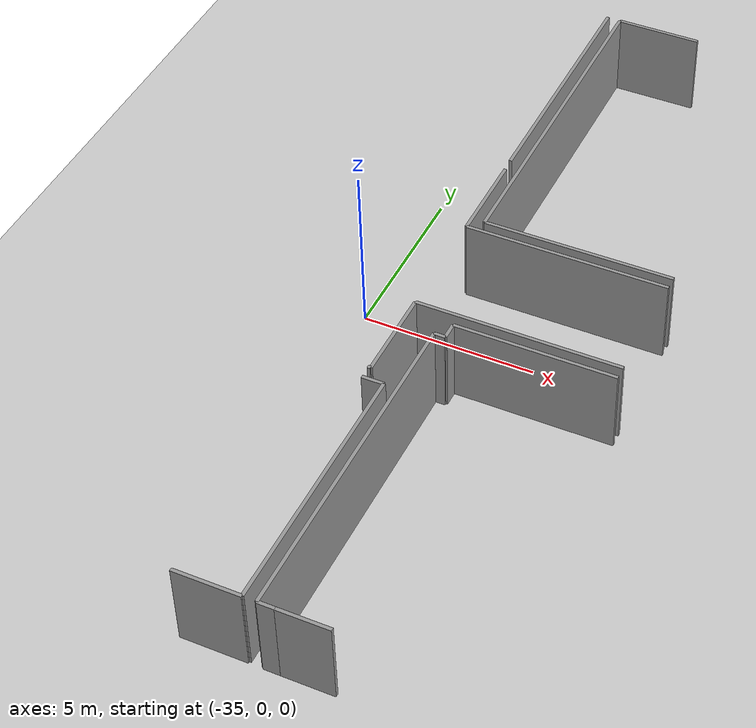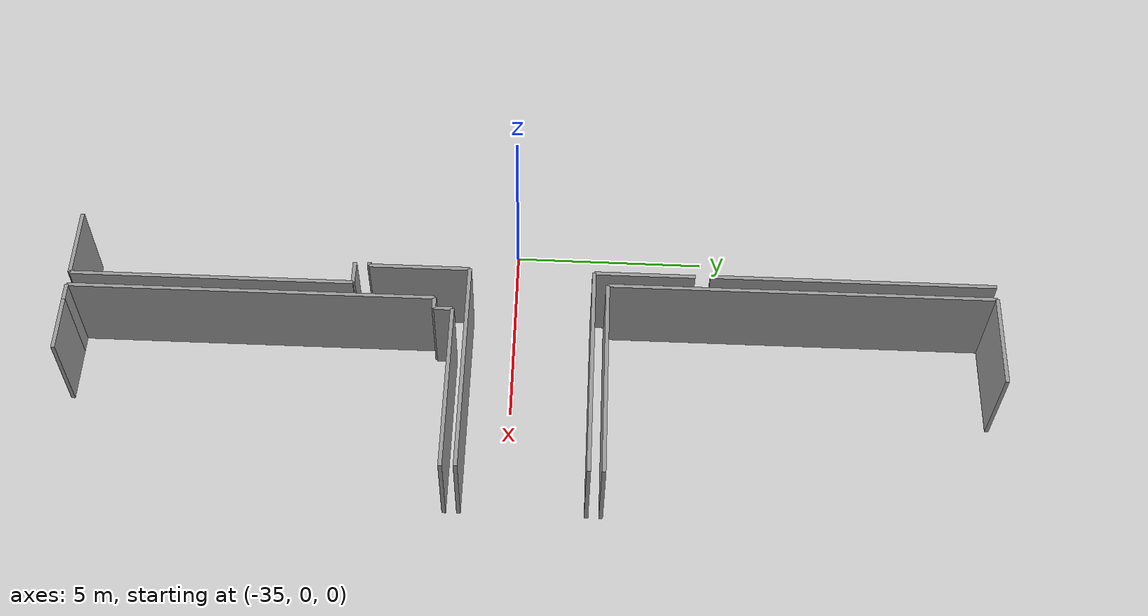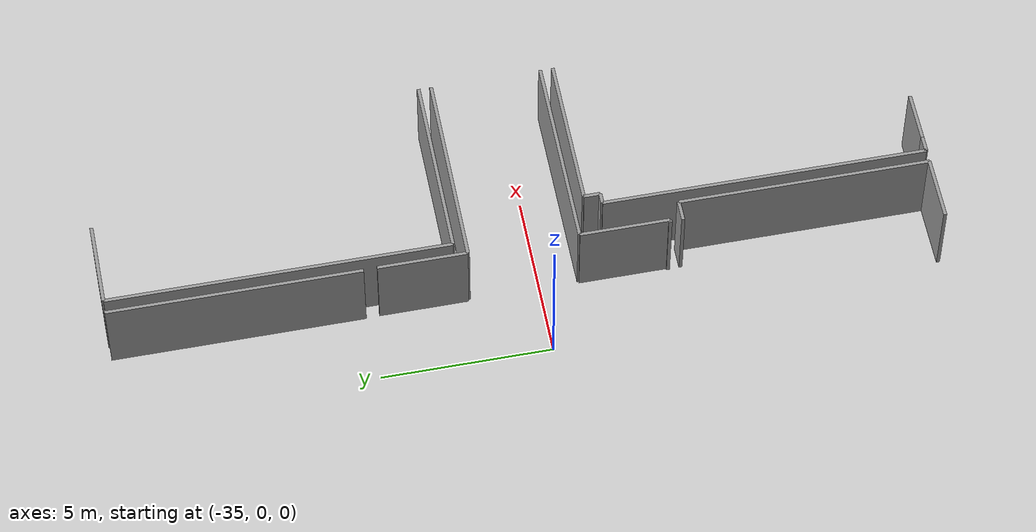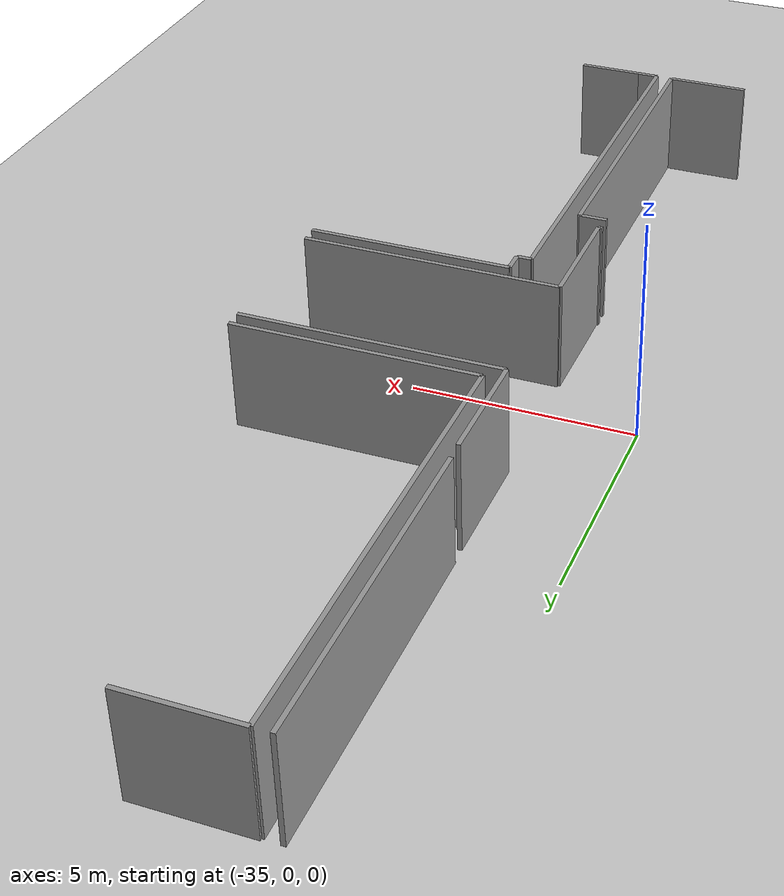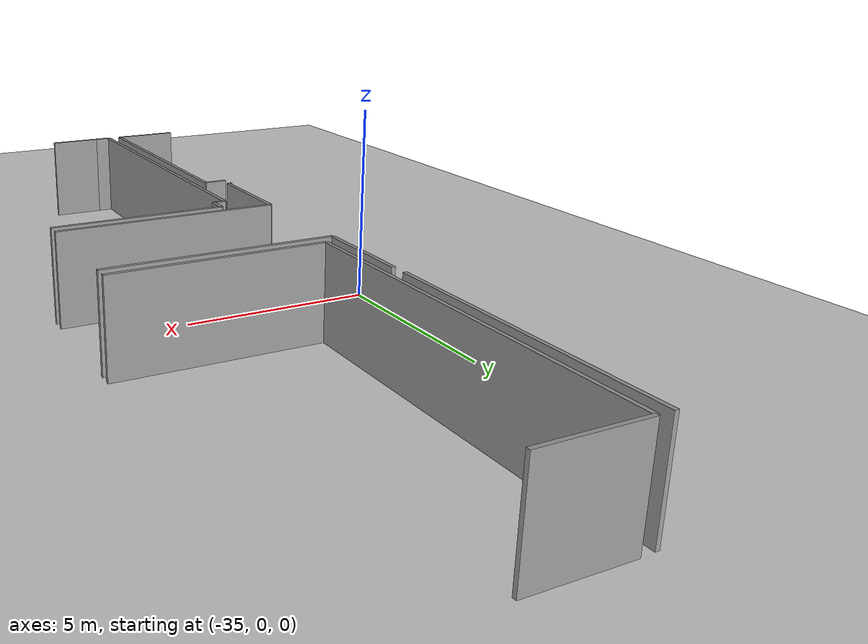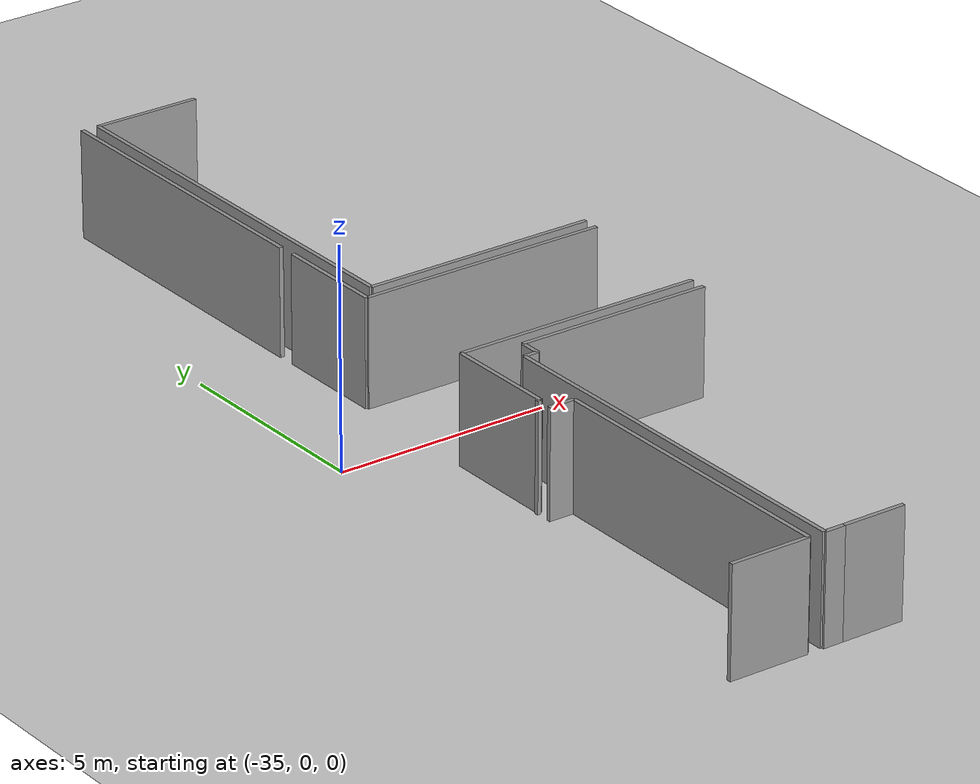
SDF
<sdf version="1.6">
 <world name="default">
  <model name="ground_plane">
   <static>1</static>
   <link name="link">
    <collision name="collision">
     <geometry><plane><normal>0 0 1</normal><size>100 100</size></plane></geometry>
     <surface><friction><ode><mu>100</mu><mu2>50</mu2></ode></friction></surface>
    </collision>
    <visual name="visual">
     <cast_shadows>0</cast_shadows>
     <geometry><plane><normal>0 0 1</normal><size>100 100</size></plane></geometry>
     <material>
      <script><uri>file://media/materials/scripts/gazebo.material</uri><name>Gazebo/Grey</name></script>
     </material>
    </visual>
   </link>
  </model>
  <model name="0510034691_Layout1">
   <static>1</static>
   <link name="Wall_9">
    <collision name="Wall_9_Collision">
     <geometry><box><size>7.37385291949 0.1 2.5</size></box></geometry>
     <pose>3.68692645975 0 1.25 0 0 0</pose>
    </collision>
    <visual name="Wall_9_Visual">
     <pose>3.68692645975 0 1.25 0 0 0</pose>
     <geometry><box><size>7.37385291949 0.1 2.5</size></box></geometry>
     <material>
      <script><uri>file://media/materials/scripts/gazebo.material</uri><name>Gazebo/Grey</name></script>
      <ambient>1 1 1 1</ambient>
     </material>
    </visual>
    <pose>23.6006253336 -0.0 0 0 0 -1.57079632679</pose>
   </link>
   <link name="Wall_13">
    <collision name="Wall_13_Collision">
     <geometry><box><size>0.619487023056 0.1 2.5</size></box></geometry>
     <pose>0.309743511528 0 1.25 0 0 0</pose>
    </collision>
    <visual name="Wall_13_Visual">
     <pose>0.309743511528 0 1.25 0 0 0</pose>
     <geometry><box><size>0.619487023056 0.1 2.5</size></box></geometry>
     <material>
      <script><uri>file://media/materials/scripts/gazebo.material</uri><name>Gazebo/Grey</name></script>
      <ambient>1 1 1 1</ambient>
     </material>
    </visual>
    <pose>23.5525814078 -16.6012099952 0 0 0 0.0</pose>
   </link>
   <link name="Wall_14">
    <collision name="Wall_14_Collision">
     <geometry><box><size>7.36317649152 0.1 2.5</size></box></geometry>
     <pose>3.68158824576 0 1.25 0 0 0</pose>
    </collision>
    <visual name="Wall_14_Visual">
     <pose>3.68158824576 0 1.25 0 0 0</pose>
     <geometry><box><size>7.36317649152 0.1 2.5</size></box></geometry>
     <material>
      <script><uri>file://media/materials/scripts/gazebo.material</uri><name>Gazebo/Grey</name></script>
      <ambient>1 1 1 1</ambient>
     </material>
    </visual>
    <pose>24.1720684308 -16.6012099952 0 0 0 -1.57079632679</pose>
   </link>
   <link name="Wall_15">
    <collision name="Wall_15_Collision">
     <geometry><box><size>1.87536541346 0.1 2.5</size></box></geometry>
     <pose>0.937682706729 0 1.25 0 0 0</pose>
    </collision>
    <visual name="Wall_15_Visual">
     <pose>0.937682706729 0 1.25 0 0 0</pose>
     <geometry><box><size>1.87536541346 0.1 2.5</size></box></geometry>
     <material>
      <script><uri>file://media/materials/scripts/gazebo.material</uri><name>Gazebo/Grey</name></script>
      <ambient>1 1 1 1</ambient>
     </material>
    </visual>
    <pose>24.1720684308 -23.9643864867 0 0 0 3.14159265359</pose>
   </link>
   <link name="Wall_17">
    <collision name="Wall_17_Collision">
     <geometry><box><size>0.468237626783 0.1 2.5</size></box></geometry>
     <pose>0.234118813391 0 1.25 0 0 0</pose>
    </collision>
    <visual name="Wall_17_Visual">
     <pose>0.234118813391 0 1.25 0 0 0</pose>
     <geometry><box><size>0.468237626783 0.1 2.5</size></box></geometry>
     <material>
      <script><uri>file://media/materials/scripts/gazebo.material</uri><name>Gazebo/Grey</name></script>
      <ambient>1 1 1 1</ambient>
     </material>
    </visual>
    <pose>25.0218612573 -23.9708686037 0 0 0 3.14159265359</pose>
   </link>
   <link name="Wall_18">
    <collision name="Wall_18_Collision">
     <geometry><box><size>9.5132057246 0.1 2.5</size></box></geometry>
     <pose>4.7566028623 0 1.25 0 0 0</pose>
    </collision>
    <visual name="Wall_18_Visual">
     <pose>4.7566028623 0 1.25 0 0 0</pose>
     <geometry><box><size>9.5132057246 0.1 2.5</size></box></geometry>
     <material>
      <script><uri>file://media/materials/scripts/gazebo.material</uri><name>Gazebo/Grey</name></script>
      <ambient>1 1 1 1</ambient>
     </material>
    </visual>
    <pose>24.5536236305 -23.9708686037 0 0 0 1.57079632679</pose>
   </link>
   <link name="Wall_19">
    <collision name="Wall_19_Collision">
     <geometry><box><size>0.319657337502 0.1 2.5</size></box></geometry>
     <pose>0.159828668751 0 1.25 0 0 0</pose>
    </collision>
    <visual name="Wall_19_Visual">
     <pose>0.159828668751 0 1.25 0 0 0</pose>
     <geometry><box><size>0.319657337502 0.1 2.5</size></box></geometry>
     <material>
      <script><uri>file://media/materials/scripts/gazebo.material</uri><name>Gazebo/Grey</name></script>
      <ambient>1 1 1 1</ambient>
     </material>
    </visual>
    <pose>24.5536236305 -14.4576628791 0 0 0 0.0</pose>
   </link>
   <link name="Wall_20">
    <collision name="Wall_20_Collision">
     <geometry><box><size>0.479930857419 0.1 2.5</size></box></geometry>
     <pose>0.239965428709 0 1.25 0 0 0</pose>
    </collision>
    <visual name="Wall_20_Visual">
     <pose>0.239965428709 0 1.25 0 0 0</pose>
     <geometry><box><size>0.479930857419 0.1 2.5</size></box></geometry>
     <material>
      <script><uri>file://media/materials/scripts/gazebo.material</uri><name>Gazebo/Grey</name></script>
      <ambient>1 1 1 1</ambient>
     </material>
    </visual>
    <pose>24.873280968 -14.4576628791 0 0 0 1.57079632679</pose>
   </link>
   <link name="Wall_21">
    <collision name="Wall_21_Collision">
     <geometry><box><size>4.56493556013 0.1 2.5</size></box></geometry>
     <pose>2.28246778007 0 1.25 0 0 0</pose>
    </collision>
    <visual name="Wall_21_Visual">
     <pose>2.28246778007 0 1.25 0 0 0</pose>
     <geometry><box><size>4.56493556013 0.1 2.5</size></box></geometry>
     <material>
      <script><uri>file://media/materials/scripts/gazebo.material</uri><name>Gazebo/Grey</name></script>
      <ambient>1 1 1 1</ambient>
     </material>
    </visual>
    <pose>24.873280968 -13.9777320217 0 0 0 0.0</pose>
   </link>
   <link name="Wall_28">
    <collision name="Wall_28_Collision">
     <geometry><box><size>1.461910953 0.1 2.5</size></box></geometry>
     <pose>0.730955476498 0 1.25 0 0 0</pose>
    </collision>
    <visual name="Wall_28_Visual">
     <pose>0.730955476498 0 1.25 0 0 0</pose>
     <geometry><box><size>1.461910953 0.1 2.5</size></box></geometry>
     <material>
      <script><uri>file://media/materials/scripts/gazebo.material</uri><name>Gazebo/Grey</name></script>
      <ambient>1 1 1 1</ambient>
     </material>
    </visual>
    <pose>26.4837692875 -23.967945296 0 0 0 -3.13959300402</pose>
   </link>
   <link name="Wall_37">
    <collision name="Wall_37_Collision">
     <geometry><box><size>9.99491598668 0.1 2.5</size></box></geometry>
     <pose>4.99745799334 0 1.25 0 0 0</pose>
    </collision>
    <visual name="Wall_37_Visual">
     <pose>4.99745799334 0 1.25 0 0 0</pose>
     <geometry><box><size>9.99491598668 0.1 2.5</size></box></geometry>
     <material>
      <script><uri>file://media/materials/scripts/gazebo.material</uri><name>Gazebo/Grey</name></script>
      <ambient>1 1 1 1</ambient>
     </material>
    </visual>
    <pose>23.9891710516 -10.0157604413 0 0 0 1.57079632679</pose>
   </link>
   <link name="Wall_38">
    <collision name="Wall_38_Collision">
     <geometry><box><size>2.48214240321 0.1 2.5</size></box></geometry>
     <pose>1.24107120161 0 1.25 0 0 0</pose>
    </collision>
    <visual name="Wall_38_Visual">
     <pose>1.24107120161 0 1.25 0 0 0</pose>
     <geometry><box><size>2.48214240321 0.1 2.5</size></box></geometry>
     <material>
      <script><uri>file://media/materials/scripts/gazebo.material</uri><name>Gazebo/Grey</name></script>
      <ambient>1 1 1 1</ambient>
     </material>
    </visual>
    <pose>23.9891710516 -0.0208444546125 0 0 0 0.0</pose>
   </link>
   <link name="Wall_42">
    <collision name="Wall_42_Collision">
     <geometry><box><size>5.45261575743 0.1 2.5</size></box></geometry>
     <pose>2.72630787872 0 1.25 0 0 0</pose>
    </collision>
    <visual name="Wall_42_Visual">
     <pose>2.72630787872 0 1.25 0 0 0</pose>
     <geometry><box><size>5.45261575743 0.1 2.5</size></box></geometry>
     <material>
      <script><uri>file://media/materials/scripts/gazebo.material</uri><name>Gazebo/Grey</name></script>
      <ambient>1 1 1 1</ambient>
     </material>
    </visual>
    <pose>29.4417753375 -10.004575612 0 0 0 -3.13954137442</pose>
   </link>
   <link name="Wall_52">
    <collision name="Wall_52_Collision">
     <geometry><box><size>2.61013243855 0.1 2.5</size></box></geometry>
     <pose>1.30506621927 0 1.25 0 0 0</pose>
    </collision>
    <visual name="Wall_52_Visual">
     <pose>1.30506621927 0 1.25 0 0 0</pose>
     <geometry><box><size>2.61013243855 0.1 2.5</size></box></geometry>
     <material>
      <script><uri>file://media/materials/scripts/gazebo.material</uri><name>Gazebo/Grey</name></script>
      <ambient>1 1 1 1</ambient>
     </material>
    </visual>
    <pose>23.6185464806 -7.76430514248 0 0 0 -1.57079632679</pose>
   </link>
   <link name="Wall_53">
    <collision name="Wall_53_Collision">
     <geometry><box><size>5.81763644221 0.1 2.5</size></box></geometry>
     <pose>2.9088182211 0 1.25 0 0 0</pose>
    </collision>
    <visual name="Wall_53_Visual">
     <pose>2.9088182211 0 1.25 0 0 0</pose>
     <geometry><box><size>5.81763644221 0.1 2.5</size></box></geometry>
     <material>
      <script><uri>file://media/materials/scripts/gazebo.material</uri><name>Gazebo/Grey</name></script>
      <ambient>1 1 1 1</ambient>
     </material>
    </visual>
    <pose>23.6185464806 -10.374437581 0 0 0 0.0</pose>
   </link>
   <link name="Wall_62">
    <collision name="Wall_62_Collision">
     <geometry><box><size>5.81356923155 0.1 2.5</size></box></geometry>
     <pose>2.90678461578 0 1.25 0 0 0</pose>
    </collision>
    <visual name="Wall_62_Visual">
     <pose>2.90678461578 0 1.25 0 0 0</pose>
     <geometry><box><size>5.81356923155 0.1 2.5</size></box></geometry>
     <material>
      <script><uri>file://media/materials/scripts/gazebo.material</uri><name>Gazebo/Grey</name></script>
      <ambient>1 1 1 1</ambient>
     </material>
    </visual>
    <pose>29.4356745215 -13.6054551463 0 0 0 3.14159265359</pose>
   </link>
   <link name="Wall_63">
    <collision name="Wall_63_Collision">
     <geometry><box><size>2.62169856885 0.1 2.5</size></box></geometry>
     <pose>1.31084928443 0 1.25 0 0 0</pose>
    </collision>
    <visual name="Wall_63_Visual">
     <pose>1.31084928443 0 1.25 0 0 0</pose>
     <geometry><box><size>2.62169856885 0.1 2.5</size></box></geometry>
     <material>
      <script><uri>file://media/materials/scripts/gazebo.material</uri><name>Gazebo/Grey</name></script>
      <ambient>1 1 1 1</ambient>
     </material>
    </visual>
    <pose>23.6221052899 -13.6054551463 0 0 0 -1.57079632679</pose>
   </link>
   <link name="Wall_64">
    <collision name="Wall_64_Collision">
     <geometry><box><size>0.088334731437 0.1 2.5</size></box></geometry>
     <pose>0.0441673657185 0 1.25 0 0 0</pose>
    </collision>
    <visual name="Wall_64_Visual">
     <pose>0.0441673657185 0 1.25 0 0 0</pose>
     <geometry><box><size>0.088334731437 0.1 2.5</size></box></geometry>
     <material>
      <script><uri>file://media/materials/scripts/gazebo.material</uri><name>Gazebo/Grey</name></script>
      <ambient>1 1 1 1</ambient>
     </material>
    </visual>
    <pose>23.6221052899 -16.2271537151 0 0 0 3.14159265359</pose>
   </link>
   <pose>-56.5 12.4463356974 0 0 0 0</pose>
  </model>
 </world>
</sdf>
